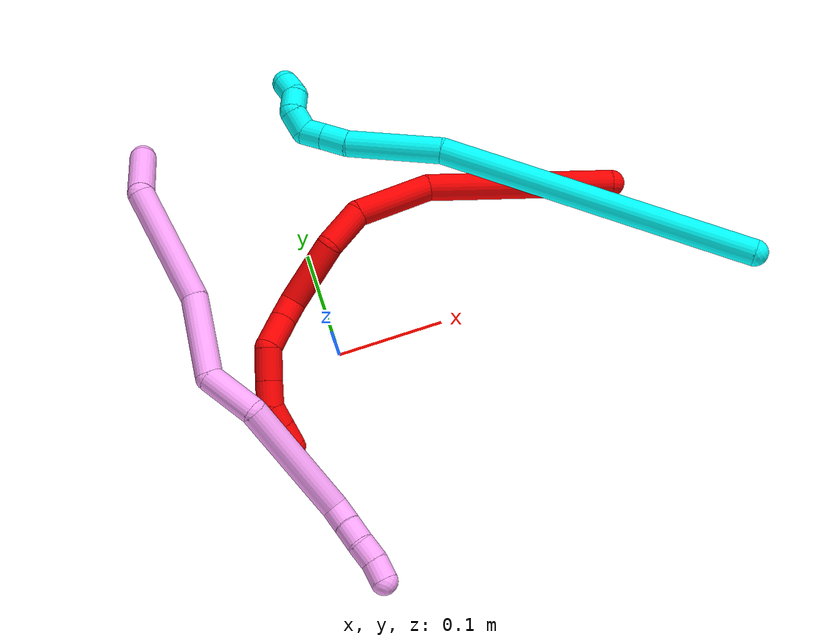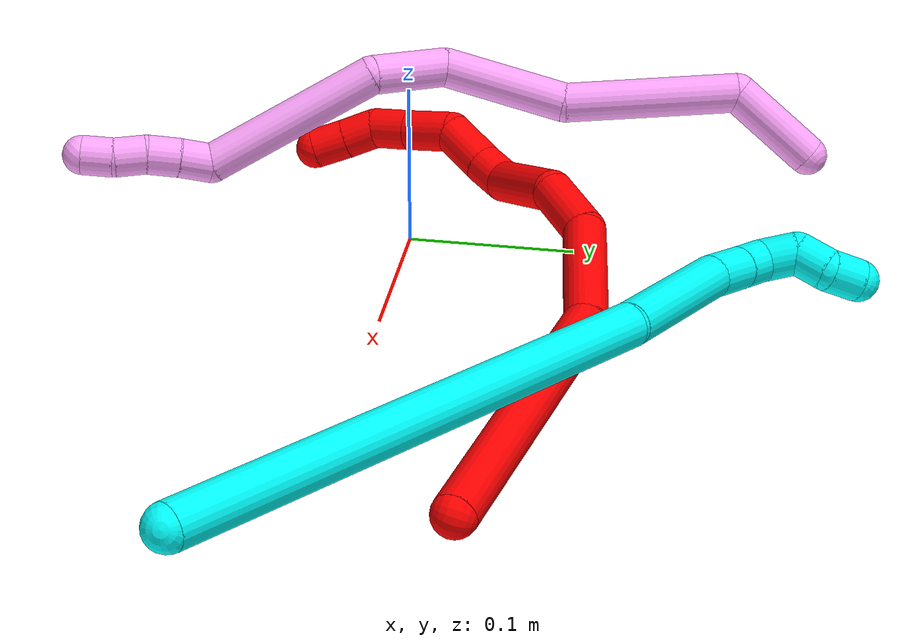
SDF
<sdf version="1.7">
 <world name="default">
  <model name="photoneo_s_sensor">
   <static>1</static>
   <pose>0 0 2 1.57079 1.57079 3.14159</pose>
   <link name="link">
    <inertial><mass>0.1</mass></inertial>
    <sensor name="sensor" type="depth">
     <update_rate>30</update_rate>
     <camera>
      <horizontal_fov>1.22</horizontal_fov>
      <image><width>1920</width><height>1200</height><format>B8G8R8</format></image>
      <clip><near>0.1</near><far>4</far></clip>
      <depth_camera><output>points</output></depth_camera>
     </camera>
     <plugin name="camera_plugin" filename="libgazebo_ros_depth_camera.so">
      <baseline>0.2</baseline>
      <alwaysOn>1</alwaysOn>
      <updateRate>0.0</updateRate>
      <cameraName>camera_ir</cameraName>
      <imageTopicName>/camera/color/image_raw</imageTopicName>
      <cameraInfoTopicName>/camera/color/camera_info</cameraInfoTopicName>
      <depthImageTopicName>/camera/depth/image_raw</depthImageTopicName>
      <depthImageCameraInfoTopicName>/camera/depth/camera_info</depthImageCameraInfoTopicName>
      <pointCloudTopicName>/camera/depth/points</pointCloudTopicName>
      <frameName>fr_optical</frameName>
      <pointCloudCutoff>0.1</pointCloudCutoff>
      <pointCloudCutoffMax>2.0</pointCloudCutoffMax>
      <distortionK1>0</distortionK1>
      <distortionK2>0</distortionK2>
      <distortionK3>0</distortionK3>
      <distortionT1>0</distortionT1>
      <distortionT2>0</distortionT2>
      <CxPrime>0</CxPrime>
      <Cx>0</Cx>
      <Cy>0</Cy>
      <focalLength>0</focalLength>
      <hackBaseline>0</hackBaseline>
     </plugin>
    </sensor>
   </link>
  </model>
  <model name="bin">
   <static>1</static>
   <link name="bottom">
    <collision name="collision-bottom">
     <pose>0 0 -0.01 0 -0 0</pose>
     <geometry><box><size>0.8 0.6 0.02</size></box></geometry>
     <surface>
      <friction><ode><mu>100</mu><mu2>100</mu2></ode></friction>
      <contact><collide_bitmask>65535</collide_bitmask></contact>
     </surface>
    </collision>
   </link>
   <link name="west_wall">
    <collision name="collision-west_wall">
     <pose>-0.41 0 0.1 0 -0 0</pose>
     <geometry><box><size>0.02 0.6 0.2</size></box></geometry>
     <surface>
      <friction><ode><mu>100</mu><mu2>100</mu2></ode></friction>
      <contact><collide_bitmask>65535</collide_bitmask></contact>
     </surface>
    </collision>
   </link>
   <link name="east_wall">
    <collision name="collision-east_wall">
     <pose>0.41 0 0.1 0 -0 0</pose>
     <geometry><box><size>0.02 0.6 0.2</size></box></geometry>
     <surface>
      <friction><ode><mu>100</mu><mu2>100</mu2></ode></friction>
      <contact><collide_bitmask>65535</collide_bitmask></contact>
     </surface>
    </collision>
   </link>
   <link name="south_wall">
    <collision name="collision-south_wall">
     <pose>0 -0.31 0.1 0 -0 0</pose>
     <geometry><box><size>0.8 0.02 0.2</size></box></geometry>
     <surface>
      <friction><ode><mu>100</mu><mu2>100</mu2></ode></friction>
      <contact><collide_bitmask>65535</collide_bitmask></contact>
     </surface>
    </collision>
   </link>
   <link name="north_wall">
    <collision name="collision-north_wall">
     <pose>0 0.31 0.1 0 -0 0</pose>
     <geometry><box><size>0.8 0.02 0.2</size></box></geometry>
     <surface>
      <friction><ode><mu>100</mu><mu2>100</mu2></ode></friction>
      <contact><collide_bitmask>65535</collide_bitmask></contact>
     </surface>
    </collision>
   </link>
  </model>
  <model name="2">
   <static>0</static>
   <link name="2">
    <collision name="collision-cylinder-e_1_1_4">
     <pose>-0.07181 -0.048178 -0.014225 1.85789 -0.960376 -1.21723</pose>
     <geometry><cylinder><radius>0.0125</radius><length>0.175272</length></cylinder></geometry>
     <surface>
      <friction><ode><mu>1.16</mu><mu2>1.16</mu2><slip1>0</slip1><slip2>0</slip2></ode></friction>
      <contact><ode><kp>1e+06</kp><kd>1</kd><max_vel>0</max_vel><min_depth>0.001</min_depth></ode></contact>
     </surface>
    </collision>
    <visual name="visual-cylinder-e_1_1_4">
     <pose>-0.07181 -0.048178 -0.014225 1.85789 -0.960376 -1.21723</pose>
     <geometry><cylinder><radius>0.0125</radius><length>0.175272</length></cylinder></geometry>
     <material><ambient>1 0 0 1</ambient></material>
    </visual>
    <collision name="collision-cylinder-e_2_4_5">
     <pose>-0.174543 -0.114447 -0.01934 1.10432 -0.990923 -0.642801</pose>
     <geometry><cylinder><radius>0.0125</radius><length>0.073935</length></cylinder></geometry>
     <surface>
      <friction><ode><mu>1.16</mu><mu2>1.16</mu2><slip1>0</slip1><slip2>0</slip2></ode></friction>
      <contact><ode><kp>1e+06</kp><kd>1</kd><max_vel>0</max_vel><min_depth>0.001</min_depth></ode></contact>
     </surface>
    </collision>
    <visual name="visual-cylinder-e_2_4_5">
     <pose>-0.174543 -0.114447 -0.01934 1.10432 -0.990923 -0.642801</pose>
     <geometry><cylinder><radius>0.0125</radius><length>0.073935</length></cylinder></geometry>
     <material><ambient>1 0 0 1</ambient></material>
    </visual>
    <collision name="collision-cylinder-e_3_5_6">
     <pose>-0.21734 -0.143225 0.002803 0.686822 -0.61366 -0.225626</pose>
     <geometry><cylinder><radius>0.0125</radius><length>0.041232</length></cylinder></geometry>
     <surface>
      <friction><ode><mu>1.16</mu><mu2>1.16</mu2><slip1>0</slip1><slip2>0</slip2></ode></friction>
      <contact><ode><kp>1e+06</kp><kd>1</kd><max_vel>0</max_vel><min_depth>0.001</min_depth></ode></contact>
     </surface>
    </collision>
    <visual name="visual-cylinder-e_3_5_6">
     <pose>-0.21734 -0.143225 0.002803 0.686822 -0.61366 -0.225626</pose>
     <geometry><cylinder><radius>0.0125</radius><length>0.041232</length></cylinder></geometry>
     <material><ambient>1 0 0 1</ambient></material>
    </visual>
    <collision name="collision-cylinder-e_4_6_7">
     <pose>-0.236324 -0.179598 0.03181 1.01443 -0.230944 -0.128734</pose>
     <geometry><cylinder><radius>0.0125</radius><length>0.062145</length></cylinder></geometry>
     <surface>
      <friction><ode><mu>1.16</mu><mu2>1.16</mu2><slip1>0</slip1><slip2>0</slip2></ode></friction>
      <contact><ode><kp>1e+06</kp><kd>1</kd><max_vel>0</max_vel><min_depth>0.001</min_depth></ode></contact>
     </surface>
    </collision>
    <visual name="visual-cylinder-e_4_6_7">
     <pose>-0.236324 -0.179598 0.03181 1.01443 -0.230944 -0.128734</pose>
     <geometry><cylinder><radius>0.0125</radius><length>0.062145</length></cylinder></geometry>
     <material><ambient>1 0 0 1</ambient></material>
    </visual>
    <collision name="collision-cylinder-e_5_7_8">
     <pose>-0.248273 -0.20965 0.055991 0.488926 -0.479666 -0.121851</pose>
     <geometry><cylinder><radius>0.0125</radius><length>0.020959</length></cylinder></geometry>
     <surface>
      <friction><ode><mu>1.16</mu><mu2>1.16</mu2><slip1>0</slip1><slip2>0</slip2></ode></friction>
      <contact><ode><kp>1e+06</kp><kd>1</kd><max_vel>0</max_vel><min_depth>0.001</min_depth></ode></contact>
     </surface>
    </collision>
    <visual name="visual-cylinder-e_5_7_8">
     <pose>-0.248273 -0.20965 0.055991 0.488926 -0.479666 -0.121851</pose>
     <geometry><cylinder><radius>0.0125</radius><length>0.020959</length></cylinder></geometry>
     <material><ambient>1 0 0 1</ambient></material>
    </visual>
    <collision name="collision-cylinder-e_6_8_9">
     <pose>-0.261177 -0.218237 0.077284 0.311979 -0.530653 -0.085417</pose>
     <geometry><cylinder><radius>0.0125</radius><length>0.031883</length></cylinder></geometry>
     <surface>
      <friction><ode><mu>1.16</mu><mu2>1.16</mu2><slip1>0</slip1><slip2>0</slip2></ode></friction>
      <contact><ode><kp>1e+06</kp><kd>1</kd><max_vel>0</max_vel><min_depth>0.001</min_depth></ode></contact>
     </surface>
    </collision>
    <visual name="visual-cylinder-e_6_8_9">
     <pose>-0.261177 -0.218237 0.077284 0.311979 -0.530653 -0.085417</pose>
     <geometry><cylinder><radius>0.0125</radius><length>0.031883</length></cylinder></geometry>
     <material><ambient>1 0 0 1</ambient></material>
    </visual>
    <collision name="collision-cylinder-e_7_9_10">
     <pose>-0.267709 -0.229042 0.103723 0.458118 0.10275 0.023976</pose>
     <geometry><cylinder><radius>0.0125</radius><length>0.029936</length></cylinder></geometry>
     <surface>
      <friction><ode><mu>1.16</mu><mu2>1.16</mu2><slip1>0</slip1><slip2>0</slip2></ode></friction>
      <contact><ode><kp>1e+06</kp><kd>1</kd><max_vel>0</max_vel><min_depth>0.001</min_depth></ode></contact>
     </surface>
    </collision>
    <visual name="visual-cylinder-e_7_9_10">
     <pose>-0.267709 -0.229042 0.103723 0.458118 0.10275 0.023976</pose>
     <geometry><cylinder><radius>0.0125</radius><length>0.029936</length></cylinder></geometry>
     <material><ambient>1 0 0 1</ambient></material>
    </visual>
    <collision name="collision-cylinder-e_8_10_11">
     <pose>-0.264929 -0.240303 0.127917 0.40728 0.10504 0.02171</pose>
     <geometry><cylinder><radius>0.0125</radius><length>0.023741</length></cylinder></geometry>
     <surface>
      <friction><ode><mu>1.16</mu><mu2>1.16</mu2><slip1>0</slip1><slip2>0</slip2></ode></friction>
      <contact><ode><kp>1e+06</kp><kd>1</kd><max_vel>0</max_vel><min_depth>0.001</min_depth></ode></contact>
     </surface>
    </collision>
    <visual name="visual-cylinder-e_8_10_11">
     <pose>-0.264929 -0.240303 0.127917 0.40728 0.10504 0.02171</pose>
     <geometry><cylinder><radius>0.0125</radius><length>0.023741</length></cylinder></geometry>
     <material><ambient>1 0 0 1</ambient></material>
    </visual>
    <collision name="collision-cylinder-e_9_11_12">
     <pose>-0.25796 -0.247582 0.146768 0.314098 0.596896 0.097353</pose>
     <geometry><cylinder><radius>0.0125</radius><length>0.020369</length></cylinder></geometry>
     <surface>
      <friction><ode><mu>1.16</mu><mu2>1.16</mu2><slip1>0</slip1><slip2>0</slip2></ode></friction>
      <contact><ode><kp>1e+06</kp><kd>1</kd><max_vel>0</max_vel><min_depth>0.001</min_depth></ode></contact>
     </surface>
    </collision>
    <visual name="visual-cylinder-e_9_11_12">
     <pose>-0.25796 -0.247582 0.146768 0.314098 0.596896 0.097353</pose>
     <geometry><cylinder><radius>0.0125</radius><length>0.020369</length></cylinder></geometry>
     <material><ambient>1 0 0 1</ambient></material>
    </visual>
    <collision name="collision-cylinder-e_10_12_2">
     <pose>-0.246673 -0.25249 0.163091 0.270608 0.572755 0.080133</pose>
     <geometry><cylinder><radius>0.0125</radius><length>0.020528</length></cylinder></geometry>
     <surface>
      <friction><ode><mu>1.16</mu><mu2>1.16</mu2><slip1>0</slip1><slip2>0</slip2></ode></friction>
      <contact><ode><kp>1e+06</kp><kd>1</kd><max_vel>0</max_vel><min_depth>0.001</min_depth></ode></contact>
     </surface>
    </collision>
    <visual name="visual-cylinder-e_10_12_2">
     <pose>-0.246673 -0.25249 0.163091 0.270608 0.572755 0.080133</pose>
     <geometry><cylinder><radius>0.0125</radius><length>0.020528</length></cylinder></geometry>
     <material><ambient>1 0 0 1</ambient></material>
    </visual>
    <collision name="collision-sphere-2">
     <pose>-0.241111 -0.254796 0.171403 0 -0 0</pose>
     <geometry><sphere><radius>0.0125</radius></sphere></geometry>
     <surface>
      <friction><ode><mu>1.16</mu><mu2>1.16</mu2><slip1>0</slip1><slip2>0</slip2></ode></friction>
      <contact><ode><kp>1e+06</kp><kd>1</kd><max_vel>0</max_vel><min_depth>0.001</min_depth></ode></contact>
     </surface>
    </collision>
    <visual name="visual-sphere-2">
     <pose>-0.241111 -0.254796 0.171403 0 -0 0</pose>
     <geometry><sphere><radius>0.0125</radius></sphere></geometry>
     <material><ambient>1 0 0 1</ambient></material>
    </visual>
    <collision name="collision-sphere-12">
     <pose>-0.252236 -0.250184 0.154779 0 -0 0</pose>
     <geometry><sphere><radius>0.0125</radius></sphere></geometry>
     <surface>
      <friction><ode><mu>1.16</mu><mu2>1.16</mu2><slip1>0</slip1><slip2>0</slip2></ode></friction>
      <contact><ode><kp>1e+06</kp><kd>1</kd><max_vel>0</max_vel><min_depth>0.001</min_depth></ode></contact>
     </surface>
    </collision>
    <visual name="visual-sphere-12">
     <pose>-0.252236 -0.250184 0.154779 0 -0 0</pose>
     <geometry><sphere><radius>0.0125</radius></sphere></geometry>
     <material><ambient>1 0 0 1</ambient></material>
    </visual>
    <collision name="collision-sphere-11">
     <pose>-0.263685 -0.244979 0.138756 0 -0 0</pose>
     <geometry><sphere><radius>0.0125</radius></sphere></geometry>
     <surface>
      <friction><ode><mu>1.16</mu><mu2>1.16</mu2><slip1>0</slip1><slip2>0</slip2></ode></friction>
      <contact><ode><kp>1e+06</kp><kd>1</kd><max_vel>0</max_vel><min_depth>0.001</min_depth></ode></contact>
     </surface>
    </collision>
    <visual name="visual-sphere-11">
     <pose>-0.263685 -0.244979 0.138756 0 -0 0</pose>
     <geometry><sphere><radius>0.0125</radius></sphere></geometry>
     <material><ambient>1 0 0 1</ambient></material>
    </visual>
    <collision name="collision-sphere-10">
     <pose>-0.266174 -0.235627 0.117077 0 -0 0</pose>
     <geometry><sphere><radius>0.0125</radius></sphere></geometry>
     <surface>
      <friction><ode><mu>1.16</mu><mu2>1.16</mu2><slip1>0</slip1><slip2>0</slip2></ode></friction>
      <contact><ode><kp>1e+06</kp><kd>1</kd><max_vel>0</max_vel><min_depth>0.001</min_depth></ode></contact>
     </surface>
    </collision>
    <visual name="visual-sphere-10">
     <pose>-0.266174 -0.235627 0.117077 0 -0 0</pose>
     <geometry><sphere><radius>0.0125</radius></sphere></geometry>
     <material><ambient>1 0 0 1</ambient></material>
    </visual>
    <collision name="collision-sphere-9">
     <pose>-0.269245 -0.222457 0.090369 0 -0 0</pose>
     <geometry><sphere><radius>0.0125</radius></sphere></geometry>
     <surface>
      <friction><ode><mu>1.16</mu><mu2>1.16</mu2><slip1>0</slip1><slip2>0</slip2></ode></friction>
      <contact><ode><kp>1e+06</kp><kd>1</kd><max_vel>0</max_vel><min_depth>0.001</min_depth></ode></contact>
     </surface>
    </collision>
    <visual name="visual-sphere-9">
     <pose>-0.269245 -0.222457 0.090369 0 -0 0</pose>
     <geometry><sphere><radius>0.0125</radius></sphere></geometry>
     <material><ambient>1 0 0 1</ambient></material>
    </visual>
    <collision name="collision-sphere-4">
     <pose>-0.143619 -0.096356 -0.028449 0 -0 0</pose>
     <geometry><sphere><radius>0.0125</radius></sphere></geometry>
     <surface>
      <friction><ode><mu>1.16</mu><mu2>1.16</mu2><slip1>0</slip1><slip2>0</slip2></ode></friction>
      <contact><ode><kp>1e+06</kp><kd>1</kd><max_vel>0</max_vel><min_depth>0.001</min_depth></ode></contact>
     </surface>
    </collision>
    <visual name="visual-sphere-4">
     <pose>-0.143619 -0.096356 -0.028449 0 -0 0</pose>
     <geometry><sphere><radius>0.0125</radius></sphere></geometry>
     <material><ambient>1 0 0 1</ambient></material>
    </visual>
    <collision name="collision-sphere-1">
     <geometry><sphere><radius>0.0125</radius></sphere></geometry>
     <surface>
      <friction><ode><mu>1.16</mu><mu2>1.16</mu2><slip1>0</slip1><slip2>0</slip2></ode></friction>
      <contact><ode><kp>1e+06</kp><kd>1</kd><max_vel>0</max_vel><min_depth>0.001</min_depth></ode></contact>
     </surface>
    </collision>
    <visual name="visual-sphere-1">
     <geometry><sphere><radius>0.0125</radius></sphere></geometry>
     <material><ambient>1 0 0 1</ambient></material>
    </visual>
    <collision name="collision-sphere-8">
     <pose>-0.253109 -0.214017 0.064199 0 -0 0</pose>
     <geometry><sphere><radius>0.0125</radius></sphere></geometry>
     <surface>
      <friction><ode><mu>1.16</mu><mu2>1.16</mu2><slip1>0</slip1><slip2>0</slip2></ode></friction>
      <contact><ode><kp>1e+06</kp><kd>1</kd><max_vel>0</max_vel><min_depth>0.001</min_depth></ode></contact>
     </surface>
    </collision>
    <visual name="visual-sphere-8">
     <pose>-0.253109 -0.214017 0.064199 0 -0 0</pose>
     <geometry><sphere><radius>0.0125</radius></sphere></geometry>
     <material><ambient>1 0 0 1</ambient></material>
    </visual>
    <collision name="collision-sphere-5">
     <pose>-0.205468 -0.132538 -0.01023 0 -0 0</pose>
     <geometry><sphere><radius>0.0125</radius></sphere></geometry>
     <surface>
      <friction><ode><mu>1.16</mu><mu2>1.16</mu2><slip1>0</slip1><slip2>0</slip2></ode></friction>
      <contact><ode><kp>1e+06</kp><kd>1</kd><max_vel>0</max_vel><min_depth>0.001</min_depth></ode></contact>
     </surface>
    </collision>
    <visual name="visual-sphere-5">
     <pose>-0.205468 -0.132538 -0.01023 0 -0 0</pose>
     <geometry><sphere><radius>0.0125</radius></sphere></geometry>
     <material><ambient>1 0 0 1</ambient></material>
    </visual>
    <collision name="collision-sphere-6">
     <pose>-0.229212 -0.153912 0.015836 0 -0 0</pose>
     <geometry><sphere><radius>0.0125</radius></sphere></geometry>
     <surface>
      <friction><ode><mu>1.16</mu><mu2>1.16</mu2><slip1>0</slip1><slip2>0</slip2></ode></friction>
      <contact><ode><kp>1e+06</kp><kd>1</kd><max_vel>0</max_vel><min_depth>0.001</min_depth></ode></contact>
     </surface>
    </collision>
    <visual name="visual-sphere-6">
     <pose>-0.229212 -0.153912 0.015836 0 -0 0</pose>
     <geometry><sphere><radius>0.0125</radius></sphere></geometry>
     <material><ambient>1 0 0 1</ambient></material>
    </visual>
    <collision name="collision-sphere-7">
     <pose>-0.243437 -0.205283 0.047783 0 -0 0</pose>
     <geometry><sphere><radius>0.0125</radius></sphere></geometry>
     <surface>
      <friction><ode><mu>1.16</mu><mu2>1.16</mu2><slip1>0</slip1><slip2>0</slip2></ode></friction>
      <contact><ode><kp>1e+06</kp><kd>1</kd><max_vel>0</max_vel><min_depth>0.001</min_depth></ode></contact>
     </surface>
    </collision>
    <visual name="visual-sphere-7">
     <pose>-0.243437 -0.205283 0.047783 0 -0 0</pose>
     <geometry><sphere><radius>0.0125</radius></sphere></geometry>
     <material><ambient>1 0 0 1</ambient></material>
    </visual>
    <inertial>
     <pose>-0.174583 -0.136225 0.028573 0 -0 0</pose>
     <mass>0.5</mass>
     <inertia>
      <ixx>-0.000133</ixx>
      <ixy>0</ixy>
      <ixz>0</ixz>
      <iyy>7.1e-05</iyy>
      <iyz>0</iyz>
      <izz>0.000723</izz>
     </inertia>
    </inertial>
   </link>
   <pose>0.29535 0.075791 0.011709 1.24369 0.698873 -0.285822</pose>
  </model>
  <model name="3">
   <static>0</static>
   <link name="3">
    <collision name="collision-cylinder-e_1_1_4">
     <pose>-0.098461 0.048598 0.103965 -0.43727 -0.709089 0.164132</pose>
     <geometry><cylinder><radius>0.0125</radius><length>0.302424</length></cylinder></geometry>
     <surface>
      <friction><ode><mu>1.16</mu><mu2>1.16</mu2><slip1>0</slip1><slip2>0</slip2></ode></friction>
      <contact><ode><kp>1e+06</kp><kd>1</kd><max_vel>0</max_vel><min_depth>0.001</min_depth></ode></contact>
     </surface>
    </collision>
    <visual name="visual-cylinder-e_1_1_4">
     <pose>-0.098461 0.048598 0.103965 -0.43727 -0.709089 0.164132</pose>
     <geometry><cylinder><radius>0.0125</radius><length>0.302424</length></cylinder></geometry>
     <material><ambient>0.003922 1 0.996078 1</ambient></material>
    </visual>
    <collision name="collision-cylinder-e_2_4_5">
     <pose>-0.218106 0.111028 0.245659 -0.351386 -0.485169 0.087803</pose>
     <geometry><cylinder><radius>0.0125</radius><length>0.090854</length></cylinder></geometry>
     <surface>
      <friction><ode><mu>1.16</mu><mu2>1.16</mu2><slip1>0</slip1><slip2>0</slip2></ode></friction>
      <contact><ode><kp>1e+06</kp><kd>1</kd><max_vel>0</max_vel><min_depth>0.001</min_depth></ode></contact>
     </surface>
    </collision>
    <visual name="visual-cylinder-e_2_4_5">
     <pose>-0.218106 0.111028 0.245659 -0.351386 -0.485169 0.087803</pose>
     <geometry><cylinder><radius>0.0125</radius><length>0.090854</length></cylinder></geometry>
     <material><ambient>0.003922 1 0.996078 1</ambient></material>
    </visual>
    <collision name="collision-cylinder-e_3_5_6">
     <pose>-0.247253 0.127792 0.292488 -0.311774 -0.694378 0.113615</pose>
     <geometry><cylinder><radius>0.0125</radius><length>0.024883</length></cylinder></geometry>
     <surface>
      <friction><ode><mu>1.16</mu><mu2>1.16</mu2><slip1>0</slip1><slip2>0</slip2></ode></friction>
      <contact><ode><kp>1e+06</kp><kd>1</kd><max_vel>0</max_vel><min_depth>0.001</min_depth></ode></contact>
     </surface>
    </collision>
    <visual name="visual-cylinder-e_3_5_6">
     <pose>-0.247253 0.127792 0.292488 -0.311774 -0.694378 0.113615</pose>
     <geometry><cylinder><radius>0.0125</radius><length>0.024883</length></cylinder></geometry>
     <material><ambient>0.003922 1 0.996078 1</ambient></material>
    </visual>
    <collision name="collision-cylinder-e_4_6_7">
     <pose>-0.261564 0.133193 0.309077 -0.318335 -0.677982 0.113083</pose>
     <geometry><cylinder><radius>0.0125</radius><length>0.020249</length></cylinder></geometry>
     <surface>
      <friction><ode><mu>1.16</mu><mu2>1.16</mu2><slip1>0</slip1><slip2>0</slip2></ode></friction>
      <contact><ode><kp>1e+06</kp><kd>1</kd><max_vel>0</max_vel><min_depth>0.001</min_depth></ode></contact>
     </surface>
    </collision>
    <visual name="visual-cylinder-e_4_6_7">
     <pose>-0.261564 0.133193 0.309077 -0.318335 -0.677982 0.113083</pose>
     <geometry><cylinder><radius>0.0125</radius><length>0.020249</length></cylinder></geometry>
     <material><ambient>0.003922 1 0.996078 1</ambient></material>
    </visual>
    <collision name="collision-cylinder-e_5_7_8">
     <pose>-0.278216 0.138412 0.317271 -1.31993 -1.30182 1.06766</pose>
     <geometry><cylinder><radius>0.0125</radius><length>0.021372</length></cylinder></geometry>
     <surface>
      <friction><ode><mu>1.16</mu><mu2>1.16</mu2><slip1>0</slip1><slip2>0</slip2></ode></friction>
      <contact><ode><kp>1e+06</kp><kd>1</kd><max_vel>0</max_vel><min_depth>0.001</min_depth></ode></contact>
     </surface>
    </collision>
    <visual name="visual-cylinder-e_5_7_8">
     <pose>-0.278216 0.138412 0.317271 -1.31993 -1.30182 1.06766</pose>
     <geometry><cylinder><radius>0.0125</radius><length>0.021372</length></cylinder></geometry>
     <material><ambient>0.003922 1 0.996078 1</ambient></material>
    </visual>
    <collision name="collision-cylinder-e_6_8_9">
     <pose>-0.297349 0.136727 0.316011 1.98778 -1.06839 -1.47557</pose>
     <geometry><cylinder><radius>0.0125</radius><length>0.020152</length></cylinder></geometry>
     <surface>
      <friction><ode><mu>1.16</mu><mu2>1.16</mu2><slip1>0</slip1><slip2>0</slip2></ode></friction>
      <contact><ode><kp>1e+06</kp><kd>1</kd><max_vel>0</max_vel><min_depth>0.001</min_depth></ode></contact>
     </surface>
    </collision>
    <visual name="visual-cylinder-e_6_8_9">
     <pose>-0.297349 0.136727 0.316011 1.98778 -1.06839 -1.47557</pose>
     <geometry><cylinder><radius>0.0125</radius><length>0.020152</length></cylinder></geometry>
     <material><ambient>0.003922 1 0.996078 1</ambient></material>
    </visual>
    <collision name="collision-cylinder-e_7_9_2">
     <pose>-0.315139 0.129757 0.317785 0.595537 -1.1038 -0.373518</pose>
     <geometry><cylinder><radius>0.0125</radius><length>0.020067</length></cylinder></geometry>
     <surface>
      <friction><ode><mu>1.16</mu><mu2>1.16</mu2><slip1>0</slip1><slip2>0</slip2></ode></friction>
      <contact><ode><kp>1e+06</kp><kd>1</kd><max_vel>0</max_vel><min_depth>0.001</min_depth></ode></contact>
     </surface>
    </collision>
    <visual name="visual-cylinder-e_7_9_2">
     <pose>-0.315139 0.129757 0.317785 0.595537 -1.1038 -0.373518</pose>
     <geometry><cylinder><radius>0.0125</radius><length>0.020067</length></cylinder></geometry>
     <material><ambient>0.003922 1 0.996078 1</ambient></material>
    </visual>
    <collision name="collision-sphere-2">
     <pose>-0.324098 0.127223 0.321524 0 -0 0</pose>
     <geometry><sphere><radius>0.0125</radius></sphere></geometry>
     <surface>
      <friction><ode><mu>1.16</mu><mu2>1.16</mu2><slip1>0</slip1><slip2>0</slip2></ode></friction>
      <contact><ode><kp>1e+06</kp><kd>1</kd><max_vel>0</max_vel><min_depth>0.001</min_depth></ode></contact>
     </surface>
    </collision>
    <visual name="visual-sphere-2">
     <pose>-0.324098 0.127223 0.321524 0 -0 0</pose>
     <geometry><sphere><radius>0.0125</radius></sphere></geometry>
     <material><ambient>0.003922 1 0.996078 1</ambient></material>
    </visual>
    <collision name="collision-sphere-9">
     <pose>-0.30618 0.13229 0.314045 0 -0 0</pose>
     <geometry><sphere><radius>0.0125</radius></sphere></geometry>
     <surface>
      <friction><ode><mu>1.16</mu><mu2>1.16</mu2><slip1>0</slip1><slip2>0</slip2></ode></friction>
      <contact><ode><kp>1e+06</kp><kd>1</kd><max_vel>0</max_vel><min_depth>0.001</min_depth></ode></contact>
     </surface>
    </collision>
    <visual name="visual-sphere-9">
     <pose>-0.30618 0.13229 0.314045 0 -0 0</pose>
     <geometry><sphere><radius>0.0125</radius></sphere></geometry>
     <material><ambient>0.003922 1 0.996078 1</ambient></material>
    </visual>
    <collision name="collision-sphere-4">
     <pose>-0.196921 0.097197 0.20793 0 -0 0</pose>
     <geometry><sphere><radius>0.0125</radius></sphere></geometry>
     <surface>
      <friction><ode><mu>1.16</mu><mu2>1.16</mu2><slip1>0</slip1><slip2>0</slip2></ode></friction>
      <contact><ode><kp>1e+06</kp><kd>1</kd><max_vel>0</max_vel><min_depth>0.001</min_depth></ode></contact>
     </surface>
    </collision>
    <visual name="visual-sphere-4">
     <pose>-0.196921 0.097197 0.20793 0 -0 0</pose>
     <geometry><sphere><radius>0.0125</radius></sphere></geometry>
     <material><ambient>0.003922 1 0.996078 1</ambient></material>
    </visual>
    <collision name="collision-sphere-1">
     <geometry><sphere><radius>0.0125</radius></sphere></geometry>
     <surface>
      <friction><ode><mu>1.16</mu><mu2>1.16</mu2><slip1>0</slip1><slip2>0</slip2></ode></friction>
      <contact><ode><kp>1e+06</kp><kd>1</kd><max_vel>0</max_vel><min_depth>0.001</min_depth></ode></contact>
     </surface>
    </collision>
    <visual name="visual-sphere-1">
     <geometry><sphere><radius>0.0125</radius></sphere></geometry>
     <material><ambient>0.003922 1 0.996078 1</ambient></material>
    </visual>
    <collision name="collision-sphere-8">
     <pose>-0.288518 0.141163 0.317976 0 -0 0</pose>
     <geometry><sphere><radius>0.0125</radius></sphere></geometry>
     <surface>
      <friction><ode><mu>1.16</mu><mu2>1.16</mu2><slip1>0</slip1><slip2>0</slip2></ode></friction>
      <contact><ode><kp>1e+06</kp><kd>1</kd><max_vel>0</max_vel><min_depth>0.001</min_depth></ode></contact>
     </surface>
    </collision>
    <visual name="visual-sphere-8">
     <pose>-0.288518 0.141163 0.317976 0 -0 0</pose>
     <geometry><sphere><radius>0.0125</radius></sphere></geometry>
     <material><ambient>0.003922 1 0.996078 1</ambient></material>
    </visual>
    <collision name="collision-sphere-5">
     <pose>-0.239291 0.12486 0.283388 0 -0 0</pose>
     <geometry><sphere><radius>0.0125</radius></sphere></geometry>
     <surface>
      <friction><ode><mu>1.16</mu><mu2>1.16</mu2><slip1>0</slip1><slip2>0</slip2></ode></friction>
      <contact><ode><kp>1e+06</kp><kd>1</kd><max_vel>0</max_vel><min_depth>0.001</min_depth></ode></contact>
     </surface>
    </collision>
    <visual name="visual-sphere-5">
     <pose>-0.239291 0.12486 0.283388 0 -0 0</pose>
     <geometry><sphere><radius>0.0125</radius></sphere></geometry>
     <material><ambient>0.003922 1 0.996078 1</ambient></material>
    </visual>
    <collision name="collision-sphere-6">
     <pose>-0.255214 0.130725 0.301587 0 -0 0</pose>
     <geometry><sphere><radius>0.0125</radius></sphere></geometry>
     <surface>
      <friction><ode><mu>1.16</mu><mu2>1.16</mu2><slip1>0</slip1><slip2>0</slip2></ode></friction>
      <contact><ode><kp>1e+06</kp><kd>1</kd><max_vel>0</max_vel><min_depth>0.001</min_depth></ode></contact>
     </surface>
    </collision>
    <visual name="visual-sphere-6">
     <pose>-0.255214 0.130725 0.301587 0 -0 0</pose>
     <geometry><sphere><radius>0.0125</radius></sphere></geometry>
     <material><ambient>0.003922 1 0.996078 1</ambient></material>
    </visual>
    <collision name="collision-sphere-7">
     <pose>-0.267914 0.135661 0.316566 0 -0 0</pose>
     <geometry><sphere><radius>0.0125</radius></sphere></geometry>
     <surface>
      <friction><ode><mu>1.16</mu><mu2>1.16</mu2><slip1>0</slip1><slip2>0</slip2></ode></friction>
      <contact><ode><kp>1e+06</kp><kd>1</kd><max_vel>0</max_vel><min_depth>0.001</min_depth></ode></contact>
     </surface>
    </collision>
    <visual name="visual-sphere-7">
     <pose>-0.267914 0.135661 0.316566 0 -0 0</pose>
     <geometry><sphere><radius>0.0125</radius></sphere></geometry>
     <material><ambient>0.003922 1 0.996078 1</ambient></material>
    </visual>
    <inertial>
     <pose>-0.158607 0.077958 0.173646 0 -0 0</pose>
     <mass>0.5</mass>
     <inertia>
      <ixx>0.002064</ixx>
      <ixy>0</ixy>
      <ixz>0</ixz>
      <iyy>0.002547</iyy>
      <iyz>0</iyz>
      <izz>0.000806</izz>
     </inertia>
    </inertial>
   </link>
   <pose>0.386919 -0.039917 0.056278 2.07919 0.004673 -1.5272</pose>
  </model>
  <model name="4">
   <static>0</static>
   <link name="4">
    <collision name="collision-cylinder-e_1_1_4">
     <pose>-0.012758 0.006594 -0.026588 -2.89849 -0.435871 2.13345</pose>
     <geometry><cylinder><radius>0.0125</radius><length>0.060438</length></cylinder></geometry>
     <surface>
      <friction><ode><mu>1.16</mu><mu2>1.16</mu2><slip1>0</slip1><slip2>0</slip2></ode></friction>
      <contact><ode><kp>1e+06</kp><kd>1</kd><max_vel>0</max_vel><min_depth>0.001</min_depth></ode></contact>
     </surface>
    </collision>
    <visual name="visual-cylinder-e_1_1_4">
     <pose>-0.012758 0.006594 -0.026588 -2.89849 -0.435871 2.13345</pose>
     <geometry><cylinder><radius>0.0125</radius><length>0.060438</length></cylinder></geometry>
     <material><ambient>1 0.65098 0.996078 1</ambient></material>
    </visual>
    <collision name="collision-cylinder-e_2_4_5">
     <pose>-0.058398 -0.013354 -0.088398 2.49582 -0.64065 -1.56225</pose>
     <geometry><cylinder><radius>0.0125</radius><length>0.110022</length></cylinder></geometry>
     <surface>
      <friction><ode><mu>1.16</mu><mu2>1.16</mu2><slip1>0</slip1><slip2>0</slip2></ode></friction>
      <contact><ode><kp>1e+06</kp><kd>1</kd><max_vel>0</max_vel><min_depth>0.001</min_depth></ode></contact>
     </surface>
    </collision>
    <visual name="visual-cylinder-e_2_4_5">
     <pose>-0.058398 -0.013354 -0.088398 2.49582 -0.64065 -1.56225</pose>
     <geometry><cylinder><radius>0.0125</radius><length>0.110022</length></cylinder></geometry>
     <material><ambient>1 0.65098 0.996078 1</ambient></material>
    </visual>
    <collision name="collision-cylinder-e_3_5_6">
     <pose>-0.109472 -0.049409 -0.158374 2.87442 -0.467557 -2.11402</pose>
     <geometry><cylinder><radius>0.0125</radius><length>0.080732</length></cylinder></geometry>
     <surface>
      <friction><ode><mu>1.16</mu><mu2>1.16</mu2><slip1>0</slip1><slip2>0</slip2></ode></friction>
      <contact><ode><kp>1e+06</kp><kd>1</kd><max_vel>0</max_vel><min_depth>0.001</min_depth></ode></contact>
     </surface>
    </collision>
    <visual name="visual-cylinder-e_3_5_6">
     <pose>-0.109472 -0.049409 -0.158374 2.87442 -0.467557 -2.11402</pose>
     <geometry><cylinder><radius>0.0125</radius><length>0.080732</length></cylinder></geometry>
     <material><ambient>1 0.65098 0.996078 1</ambient></material>
    </visual>
    <collision name="collision-cylinder-e_4_6_7">
     <pose>-0.150276 -0.066581 -0.202186 2.4396 -1.08771 -2.05263</pose>
     <geometry><cylinder><radius>0.0125</radius><length>0.051067</length></cylinder></geometry>
     <surface>
      <friction><ode><mu>1.16</mu><mu2>1.16</mu2><slip1>0</slip1><slip2>0</slip2></ode></friction>
      <contact><ode><kp>1e+06</kp><kd>1</kd><max_vel>0</max_vel><min_depth>0.001</min_depth></ode></contact>
     </surface>
    </collision>
    <visual name="visual-cylinder-e_4_6_7">
     <pose>-0.150276 -0.066581 -0.202186 2.4396 -1.08771 -2.05263</pose>
     <geometry><cylinder><radius>0.0125</radius><length>0.051067</length></cylinder></geometry>
     <material><ambient>1 0.65098 0.996078 1</ambient></material>
    </visual>
    <collision name="collision-cylinder-e_5_7_8">
     <pose>-0.206685 -0.11809 -0.22836 1.94299 -0.622679 -0.880501</pose>
     <geometry><cylinder><radius>0.0125</radius><length>0.115899</length></cylinder></geometry>
     <surface>
      <friction><ode><mu>1.16</mu><mu2>1.16</mu2><slip1>0</slip1><slip2>0</slip2></ode></friction>
      <contact><ode><kp>1e+06</kp><kd>1</kd><max_vel>0</max_vel><min_depth>0.001</min_depth></ode></contact>
     </surface>
    </collision>
    <visual name="visual-cylinder-e_5_7_8">
     <pose>-0.206685 -0.11809 -0.22836 1.94299 -0.622679 -0.880501</pose>
     <geometry><cylinder><radius>0.0125</radius><length>0.115899</length></cylinder></geometry>
     <material><ambient>1 0.65098 0.996078 1</ambient></material>
    </visual>
    <collision name="collision-cylinder-e_6_8_9">
     <pose>-0.248386 -0.163727 -0.252083 2.8774 -0.857365 -2.57573</pose>
     <geometry><cylinder><radius>0.0125</radius><length>0.020908</length></cylinder></geometry>
     <surface>
      <friction><ode><mu>1.16</mu><mu2>1.16</mu2><slip1>0</slip1><slip2>0</slip2></ode></friction>
      <contact><ode><kp>1e+06</kp><kd>1</kd><max_vel>0</max_vel><min_depth>0.001</min_depth></ode></contact>
     </surface>
    </collision>
    <visual name="visual-cylinder-e_6_8_9">
     <pose>-0.248386 -0.163727 -0.252083 2.8774 -0.857365 -2.57573</pose>
     <geometry><cylinder><radius>0.0125</radius><length>0.020908</length></cylinder></geometry>
     <material><ambient>1 0.65098 0.996078 1</ambient></material>
    </visual>
    <collision name="collision-cylinder-e_7_9_10">
     <pose>-0.263961 -0.168086 -0.265126 2.76147 -0.835776 -2.32391</pose>
     <geometry><cylinder><radius>0.0125</radius><length>0.020679</length></cylinder></geometry>
     <surface>
      <friction><ode><mu>1.16</mu><mu2>1.16</mu2><slip1>0</slip1><slip2>0</slip2></ode></friction>
      <contact><ode><kp>1e+06</kp><kd>1</kd><max_vel>0</max_vel><min_depth>0.001</min_depth></ode></contact>
     </surface>
    </collision>
    <visual name="visual-cylinder-e_7_9_10">
     <pose>-0.263961 -0.168086 -0.265126 2.76147 -0.835776 -2.32391</pose>
     <geometry><cylinder><radius>0.0125</radius><length>0.020679</length></cylinder></geometry>
     <material><ambient>1 0.65098 0.996078 1</ambient></material>
    </visual>
    <collision name="collision-cylinder-e_8_10_11">
     <pose>-0.27901 -0.175014 -0.276934 2.46012 -0.818032 -1.77037</pose>
     <geometry><cylinder><radius>0.0125</radius><length>0.020223</length></cylinder></geometry>
     <surface>
      <friction><ode><mu>1.16</mu><mu2>1.16</mu2><slip1>0</slip1><slip2>0</slip2></ode></friction>
      <contact><ode><kp>1e+06</kp><kd>1</kd><max_vel>0</max_vel><min_depth>0.001</min_depth></ode></contact>
     </surface>
    </collision>
    <visual name="visual-cylinder-e_8_10_11">
     <pose>-0.27901 -0.175014 -0.276934 2.46012 -0.818032 -1.77037</pose>
     <geometry><cylinder><radius>0.0125</radius><length>0.020223</length></cylinder></geometry>
     <material><ambient>1 0.65098 0.996078 1</ambient></material>
    </visual>
    <collision name="collision-cylinder-e_9_11_2">
     <pose>-0.292665 -0.182827 -0.289302 2.68263 -0.677024 -1.96997</pose>
     <geometry><cylinder><radius>0.0125</radius><length>0.020033</length></cylinder></geometry>
     <surface>
      <friction><ode><mu>1.16</mu><mu2>1.16</mu2><slip1>0</slip1><slip2>0</slip2></ode></friction>
      <contact><ode><kp>1e+06</kp><kd>1</kd><max_vel>0</max_vel><min_depth>0.001</min_depth></ode></contact>
     </surface>
    </collision>
    <visual name="visual-cylinder-e_9_11_2">
     <pose>-0.292665 -0.182827 -0.289302 2.68263 -0.677024 -1.96997</pose>
     <geometry><cylinder><radius>0.0125</radius><length>0.020033</length></cylinder></geometry>
     <material><ambient>1 0.65098 0.996078 1</ambient></material>
    </visual>
    <collision name="collision-sphere-2">
     <pose>-0.29894 -0.186286 -0.296301 0 -0 0</pose>
     <geometry><sphere><radius>0.0125</radius></sphere></geometry>
     <surface>
      <friction><ode><mu>1.16</mu><mu2>1.16</mu2><slip1>0</slip1><slip2>0</slip2></ode></friction>
      <contact><ode><kp>1e+06</kp><kd>1</kd><max_vel>0</max_vel><min_depth>0.001</min_depth></ode></contact>
     </surface>
    </collision>
    <visual name="visual-sphere-2">
     <pose>-0.29894 -0.186286 -0.296301 0 -0 0</pose>
     <geometry><sphere><radius>0.0125</radius></sphere></geometry>
     <material><ambient>1 0.65098 0.996078 1</ambient></material>
    </visual>
    <collision name="collision-sphere-11">
     <pose>-0.28639 -0.179368 -0.282303 0 -0 0</pose>
     <geometry><sphere><radius>0.0125</radius></sphere></geometry>
     <surface>
      <friction><ode><mu>1.16</mu><mu2>1.16</mu2><slip1>0</slip1><slip2>0</slip2></ode></friction>
      <contact><ode><kp>1e+06</kp><kd>1</kd><max_vel>0</max_vel><min_depth>0.001</min_depth></ode></contact>
     </surface>
    </collision>
    <visual name="visual-sphere-11">
     <pose>-0.28639 -0.179368 -0.282303 0 -0 0</pose>
     <geometry><sphere><radius>0.0125</radius></sphere></geometry>
     <material><ambient>1 0.65098 0.996078 1</ambient></material>
    </visual>
    <collision name="collision-sphere-10">
     <pose>-0.271631 -0.170659 -0.271565 0 -0 0</pose>
     <geometry><sphere><radius>0.0125</radius></sphere></geometry>
     <surface>
      <friction><ode><mu>1.16</mu><mu2>1.16</mu2><slip1>0</slip1><slip2>0</slip2></ode></friction>
      <contact><ode><kp>1e+06</kp><kd>1</kd><max_vel>0</max_vel><min_depth>0.001</min_depth></ode></contact>
     </surface>
    </collision>
    <visual name="visual-sphere-10">
     <pose>-0.271631 -0.170659 -0.271565 0 -0 0</pose>
     <geometry><sphere><radius>0.0125</radius></sphere></geometry>
     <material><ambient>1 0.65098 0.996078 1</ambient></material>
    </visual>
    <collision name="collision-sphere-9">
     <pose>-0.256291 -0.165514 -0.258687 0 -0 0</pose>
     <geometry><sphere><radius>0.0125</radius></sphere></geometry>
     <surface>
      <friction><ode><mu>1.16</mu><mu2>1.16</mu2><slip1>0</slip1><slip2>0</slip2></ode></friction>
      <contact><ode><kp>1e+06</kp><kd>1</kd><max_vel>0</max_vel><min_depth>0.001</min_depth></ode></contact>
     </surface>
    </collision>
    <visual name="visual-sphere-9">
     <pose>-0.256291 -0.165514 -0.258687 0 -0 0</pose>
     <geometry><sphere><radius>0.0125</radius></sphere></geometry>
     <material><ambient>1 0.65098 0.996078 1</ambient></material>
    </visual>
    <collision name="collision-sphere-4">
     <pose>-0.025517 0.013188 -0.053176 0 -0 0</pose>
     <geometry><sphere><radius>0.0125</radius></sphere></geometry>
     <surface>
      <friction><ode><mu>1.16</mu><mu2>1.16</mu2><slip1>0</slip1><slip2>0</slip2></ode></friction>
      <contact><ode><kp>1e+06</kp><kd>1</kd><max_vel>0</max_vel><min_depth>0.001</min_depth></ode></contact>
     </surface>
    </collision>
    <visual name="visual-sphere-4">
     <pose>-0.025517 0.013188 -0.053176 0 -0 0</pose>
     <geometry><sphere><radius>0.0125</radius></sphere></geometry>
     <material><ambient>1 0.65098 0.996078 1</ambient></material>
    </visual>
    <collision name="collision-sphere-1">
     <geometry><sphere><radius>0.0125</radius></sphere></geometry>
     <surface>
      <friction><ode><mu>1.16</mu><mu2>1.16</mu2><slip1>0</slip1><slip2>0</slip2></ode></friction>
      <contact><ode><kp>1e+06</kp><kd>1</kd><max_vel>0</max_vel><min_depth>0.001</min_depth></ode></contact>
     </surface>
    </collision>
    <visual name="visual-sphere-1">
     <geometry><sphere><radius>0.0125</radius></sphere></geometry>
     <material><ambient>1 0.65098 0.996078 1</ambient></material>
    </visual>
    <collision name="collision-sphere-8">
     <pose>-0.240482 -0.161941 -0.245479 0 -0 0</pose>
     <geometry><sphere><radius>0.0125</radius></sphere></geometry>
     <surface>
      <friction><ode><mu>1.16</mu><mu2>1.16</mu2><slip1>0</slip1><slip2>0</slip2></ode></friction>
      <contact><ode><kp>1e+06</kp><kd>1</kd><max_vel>0</max_vel><min_depth>0.001</min_depth></ode></contact>
     </surface>
    </collision>
    <visual name="visual-sphere-8">
     <pose>-0.240482 -0.161941 -0.245479 0 -0 0</pose>
     <geometry><sphere><radius>0.0125</radius></sphere></geometry>
     <material><ambient>1 0.65098 0.996078 1</ambient></material>
    </visual>
    <collision name="collision-sphere-5">
     <pose>-0.091278 -0.039895 -0.123619 0 -0 0</pose>
     <geometry><sphere><radius>0.0125</radius></sphere></geometry>
     <surface>
      <friction><ode><mu>1.16</mu><mu2>1.16</mu2><slip1>0</slip1><slip2>0</slip2></ode></friction>
      <contact><ode><kp>1e+06</kp><kd>1</kd><max_vel>0</max_vel><min_depth>0.001</min_depth></ode></contact>
     </surface>
    </collision>
    <visual name="visual-sphere-5">
     <pose>-0.091278 -0.039895 -0.123619 0 -0 0</pose>
     <geometry><sphere><radius>0.0125</radius></sphere></geometry>
     <material><ambient>1 0.65098 0.996078 1</ambient></material>
    </visual>
    <collision name="collision-sphere-6">
     <pose>-0.127665 -0.058922 -0.193129 0 -0 0</pose>
     <geometry><sphere><radius>0.0125</radius></sphere></geometry>
     <surface>
      <friction><ode><mu>1.16</mu><mu2>1.16</mu2><slip1>0</slip1><slip2>0</slip2></ode></friction>
      <contact><ode><kp>1e+06</kp><kd>1</kd><max_vel>0</max_vel><min_depth>0.001</min_depth></ode></contact>
     </surface>
    </collision>
    <visual name="visual-sphere-6">
     <pose>-0.127665 -0.058922 -0.193129 0 -0 0</pose>
     <geometry><sphere><radius>0.0125</radius></sphere></geometry>
     <material><ambient>1 0.65098 0.996078 1</ambient></material>
    </visual>
    <collision name="collision-sphere-7">
     <pose>-0.172888 -0.07424 -0.211242 0 -0 0</pose>
     <geometry><sphere><radius>0.0125</radius></sphere></geometry>
     <surface>
      <friction><ode><mu>1.16</mu><mu2>1.16</mu2><slip1>0</slip1><slip2>0</slip2></ode></friction>
      <contact><ode><kp>1e+06</kp><kd>1</kd><max_vel>0</max_vel><min_depth>0.001</min_depth></ode></contact>
     </surface>
    </collision>
    <visual name="visual-sphere-7">
     <pose>-0.172888 -0.07424 -0.211242 0 -0 0</pose>
     <geometry><sphere><radius>0.0125</radius></sphere></geometry>
     <material><ambient>1 0.65098 0.996078 1</ambient></material>
    </visual>
    <inertial>
     <pose>-0.13964 -0.072494 -0.166119 0 -0 0</pose>
     <mass>0.5</mass>
     <inertia>
      <ixx>-0.000195</ixx>
      <ixy>0</ixy>
      <ixz>0</ixz>
      <iyy>-9.7e-05</iyy>
      <iyz>0</iyz>
      <izz>0.000339</izz>
     </inertia>
    </inertial>
   </link>
   <pose>-0.120424 0.236515 0.017224 1.94145 0.257266 2.62758</pose>
  </model>
 </world>
</sdf>
